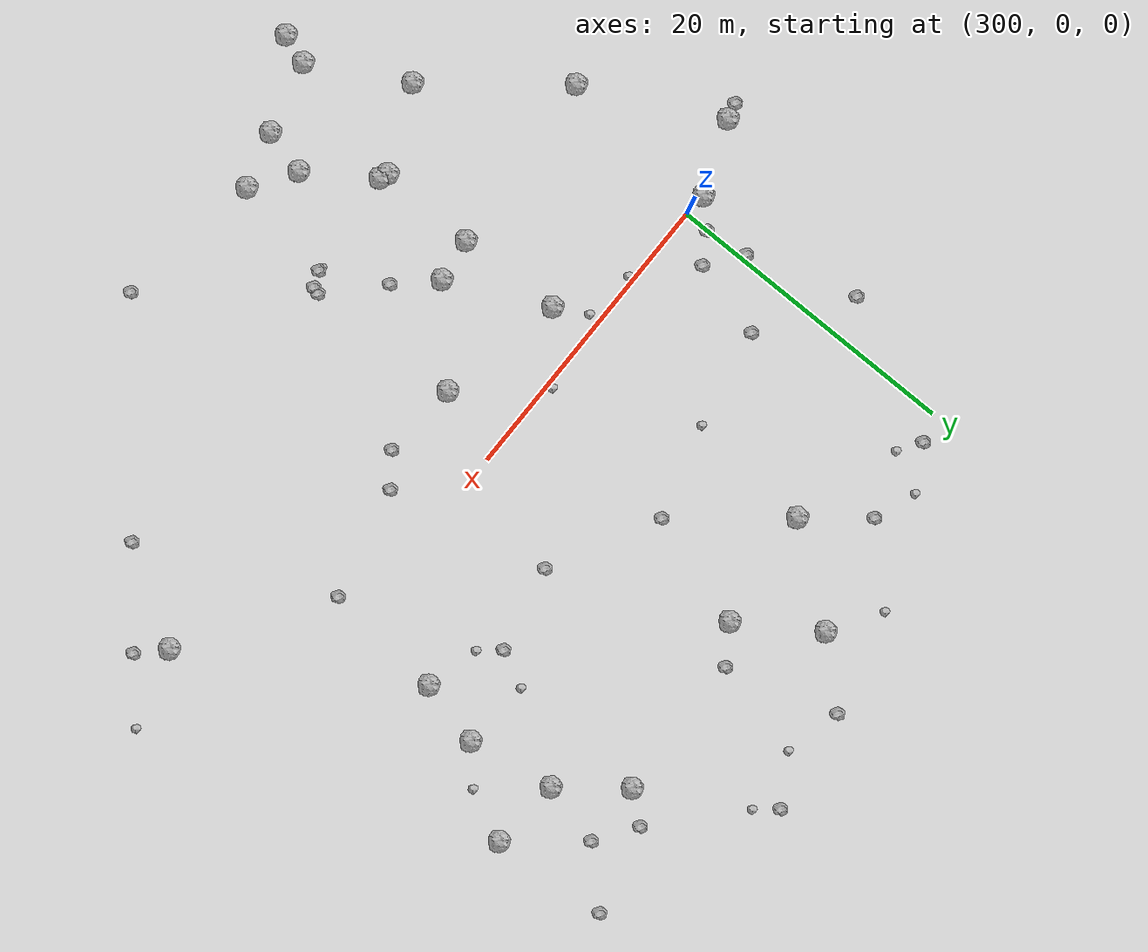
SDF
<sdf version="1.6">
 <world name="default">
  <include><uri>model://sun</uri></include>
  <model name="rock1_8_3">
   <include><uri>model://rock1</uri><pose>307.8653759571769 -24.813528655558247 0.5 0 0 0</pose></include>
  </model>
  <model name="rock1_8_4">
   <include><uri>model://rock1</uri><pose>298.0834868248422 -10.575072601482141 0.5 0 0 0</pose></include>
  </model>
  <model name="rock1_8_5">
   <include><uri>model://rock1</uri><pose>293.75552450125576 -1.776709131176112 0.5 0 0 0</pose></include>
  </model>
  <model name="rock1_8_6">
   <include><uri>model://rock1</uri><pose>341.91436315036617 -8.056882256777381 0.5 0 0 0</pose></include>
  </model>
  <model name="rock1_8_7">
   <include><uri>model://rock1</uri><pose>313.3718922582554 -20.709665524926105 0.5 0 0 0</pose></include>
  </model>
  <model name="rock1_8_8">
   <include><uri>model://rock1</uri><pose>298.4920958840703 0.08359625656226655 0.5 0 0 0</pose></include>
  </model>
  <model name="rock1_8_9">
   <include><uri>model://rock1</uri><pose>309.928899896067 -2.8832436379056645 0.5 0 0 0</pose></include>
  </model>
  <model name="rock1_8_10">
   <include><uri>model://rock1</uri><pose>310.4926817942801 -16.463784896395182 0.5 0 0 0</pose></include>
  </model>
  <model name="rock1_8_11">
   <include><uri>model://rock1</uri><pose>309.95213380418807 -16.239701170166224 0.5 0 0 0</pose></include>
  </model>
  <model name="rock1_8_12">
   <include><uri>model://rock1</uri><pose>330.33781340879483 20.14457398679245 0.5 0 0 0</pose></include>
  </model>
  <model name="rock1_8_13">
   <include><uri>model://rock1</uri><pose>312.9878472702252 -9.390256024989966 0.5 0 0 0</pose></include>
  </model>
  <model name="rock1_8_14">
   <include><uri>model://rock1</uri><pose>310.11682813005797 -9.764164429740095 0.5 0 0 0</pose></include>
  </model>
  <model name="rock1_8_15">
   <include><uri>model://rock1</uri><pose>316.2384076538221 -22.604585876692763 0.5 0 0 0</pose></include>
  </model>
  <model name="rock1_8_16">
   <include><uri>model://rock1</uri><pose>334.4515418959079 10.366034206719767 0.5 0 0 0</pose></include>
  </model>
  <model name="rock1_8_17">
   <include><uri>model://rock1</uri><pose>333.3766449847996 6.087467992115798 0.5 0 0 0</pose></include>
  </model>
  <model name="rock1_8_18">
   <include><uri>model://rock1</uri><pose>333.5184335075278 16.119223362991356 0.5 0 0 0</pose></include>
  </model>
  <model name="rock1_8_19">
   <include><uri>model://rock1</uri><pose>310.5218664217961 17.472246533208924 0.5 0 0 0</pose></include>
  </model>
  <model name="rock1_8_20">
   <include><uri>model://rock1</uri><pose>307.20183450445893 -26.742713373475205 0.5 0 0 0</pose></include>
  </model>
  <model name="rock1_8_21">
   <include><uri>model://rock1</uri><pose>314.9778714981417 23.40082670247712 0.5 0 0 0</pose></include>
  </model>
  <model name="rock1_8_22">
   <include><uri>model://rock1</uri><pose>318.21626728492106 -4.678257392530881 0.5 0 0 0</pose></include>
  </model>
  <model name="rock1_8_23">
   <include><uri>model://rock1</uri><pose>338.2302604424771 15.743211796623093 0.5 0 0 0</pose></include>
  </model>
  <model name="rock1_8_24">
   <include><uri>model://rock1</uri><pose>312.5794491914657 -23.64736198041369 0.5 0 0 0</pose></include>
  </model>
  <model name="rock1_8_25">
   <include><uri>model://rock1</uri><pose>318.3038514583894 18.30167406860606 0.5 0 0 0</pose></include>
  </model>
  <model name="rock1_8_26">
   <include><uri>model://rock1</uri><pose>304.50555129170624 -18.652313581816543 0.5 0 0 0</pose></include>
  </model>
  <model name="rock2_8_0">
   <include><uri>model://rock2</uri><pose>318.4419414657865 -15.347398399144044 0.3 0 0 0</pose></include>
  </model>
  <model name="rock2_8_1">
   <include><uri>model://rock2</uri><pose>307.43540290807243 21.303372590663493 0.3 0 0 0</pose></include>
  </model>
  <model name="rock2_8_2">
   <include><uri>model://rock2</uri><pose>323.02828532465037 7.168196560782867 0.3 0 0 0</pose></include>
  </model>
  <model name="rock2_8_3">
   <include><uri>model://rock2</uri><pose>301.7827418369214 20.678136471975108 0.3 0 0 0</pose></include>
  </model>
  <model name="rock2_8_4">
   <include><uri>model://rock2</uri><pose>325.95072943669123 -24.12332261194628 0.3 0 0 0</pose></include>
  </model>
  <model name="rock2_8_5">
   <include><uri>model://rock2</uri><pose>292.652884161943 -2.0193470105805744 0.3 0 0 0</pose></include>
  </model>
  <model name="rock2_8_6">
   <include><uri>model://rock2</uri><pose>328.6614637743646 8.376100023181444 0.3 0 0 0</pose></include>
  </model>
  <model name="rock2_8_7">
   <include><uri>model://rock2</uri><pose>318.58286622660927 -14.892179384873668 0.3 0 0 0</pose></include>
  </model>
  <model name="rock2_8_8">
   <include><uri>model://rock2</uri><pose>323.2953996751357 -5.057781929800505 0.3 0 0 0</pose></include>
  </model>
  <model name="rock2_8_9">
   <include><uri>model://rock2</uri><pose>300.0248238640803 1.6623234239777887 0.3 0 0 0</pose></include>
  </model>
  <model name="rock2_8_10">
   <include><uri>model://rock2</uri><pose>315.25829609234546 -11.73863109110616 0.3 0 0 0</pose></include>
  </model>
  <model name="rock2_8_11">
   <include><uri>model://rock2</uri><pose>320.6688637176997 19.928933854575682 0.3 0 0 0</pose></include>
  </model>
  <model name="rock2_8_12">
   <include><uri>model://rock2</uri><pose>325.31293127267395 -3.5461458218764683 0.3 0 0 0</pose></include>
  </model>
  <model name="rock2_8_13">
   <include><uri>model://rock2</uri><pose>317.4224352850144 -15.765974528916093 0.3 0 0 0</pose></include>
  </model>
  <model name="rock2_8_14">
   <include><uri>model://rock2</uri><pose>303.25474448131666 7.913961660200101 0.3 0 0 0</pose></include>
  </model>
  <model name="rock2_8_15">
   <include><uri>model://rock2</uri><pose>315.91832647990185 10.893730224970284 0.3 0 0 0</pose></include>
  </model>
  <model name="rock2_8_16">
   <include><uri>model://rock2</uri><pose>297.3009434601097 11.633049173469352 0.3 0 0 0</pose></include>
  </model>
  <model name="rock2_8_17">
   <include><uri>model://rock2</uri><pose>338.1502876985071 -14.11860354152784 0.3 0 0 0</pose></include>
  </model>
  <model name="rock2_8_18">
   <include><uri>model://rock2</uri><pose>318.5115296758453 27.276632992704847 0.3 0 0 0</pose></include>
  </model>
  <model name="rock2_8_19">
   <include><uri>model://rock2</uri><pose>343.55174329645575 -9.636665341964687 0.3 0 0 0</pose></include>
  </model>
  <model name="rock2_8_20">
   <include><uri>model://rock2</uri><pose>299.6273517847383 4.547084365843297 0.3 0 0 0</pose></include>
  </model>
  <model name="rock2_8_21">
   <include><uri>model://rock2</uri><pose>301.90639601987283 2.8309836920638745 0.3 0 0 0</pose></include>
  </model>
  <model name="rock2_8_22">
   <include><uri>model://rock2</uri><pose>334.5442132545041 20.276536734093327 0.3 0 0 0</pose></include>
  </model>
  <model name="rock2_8_23">
   <include><uri>model://rock2</uri><pose>325.444906060374 28.275285979092565 0.3 0 0 0</pose></include>
  </model>
  <model name="rock2_8_24">
   <include><uri>model://rock2</uri><pose>337.742647223601 23.55060824271802 0.3 0 0 0</pose></include>
  </model>
  <model name="rock2_8_25">
   <include><uri>model://rock2</uri><pose>331.883652211615 22.097461726424108 0.3 0 0 0</pose></include>
  </model>
  <model name="rock2_8_26">
   <include><uri>model://rock2</uri><pose>332.634324674731 -1.8433145336009495 0.3 0 0 0</pose></include>
  </model>
  <model name="rock3_8_0">
   <include><uri>model://rock3</uri><pose>317.14201663120963 -15.759775660023953 0.2 0 0 0</pose></include>
  </model>
  <model name="rock3_8_1">
   <include><uri>model://rock3</uri><pose>311.6086081407634 25.522938745584902 0.2 0 0 0</pose></include>
  </model>
  <model name="rock3_8_2">
   <include><uri>model://rock3</uri><pose>309.7560993619297 9.12885303535952 0.2 0 0 0</pose></include>
  </model>
  <model name="rock3_8_3">
   <include><uri>model://rock3</uri><pose>329.82571069330004 10.719553841882515 0.2 0 0 0</pose></include>
  </model>
  <model name="rock3_8_4">
   <include><uri>model://rock3</uri><pose>347.1302980886383 -6.534187506155142 0.2 0 0 0</pose></include>
  </model>
  <model name="rock3_8_5">
   <include><uri>model://rock3</uri><pose>326.58263629254554 26.884380228133047 0.2 0 0 0</pose></include>
  </model>
  <model name="rock3_8_6">
   <include><uri>model://rock3</uri><pose>313.86323282368824 0.3226552389584363 0.2 0 0 0</pose></include>
  </model>
  <model name="rock3_8_7">
   <include><uri>model://rock3</uri><pose>329.78650488684104 7.031893011743321 0.2 0 0 0</pose></include>
  </model>
  <model name="rock3_8_8">
   <include><uri>model://rock3</uri><pose>336.67934025835376 12.38604598940963 0.2 0 0 0</pose></include>
  </model>
  <model name="rock3_8_9">
   <include><uri>model://rock3</uri><pose>308.77366455679015 -0.7914289517168385 0.2 0 0 0</pose></include>
  </model>
  <model name="rock3_8_10">
   <include><uri>model://rock3</uri><pose>305.3587734032431 -0.39296938240289236 0.2 0 0 0</pose></include>
  </model>
  <model name="rock3_8_11">
   <include><uri>model://rock3</uri><pose>304.62007634435105 22.310895615516152 0.2 0 0 0</pose></include>
  </model>
  <model name="rock3_8_12">
   <include><uri>model://rock3</uri><pose>322.257552681527 26.331816829508014 0.2 0 0 0</pose></include>
  </model>
  <model name="rock3_8_13">
   <include><uri>model://rock3</uri><pose>303.28141709778384 19.681088339433806 0.2 0 0 0</pose></include>
  </model>
 </world>
</sdf>
